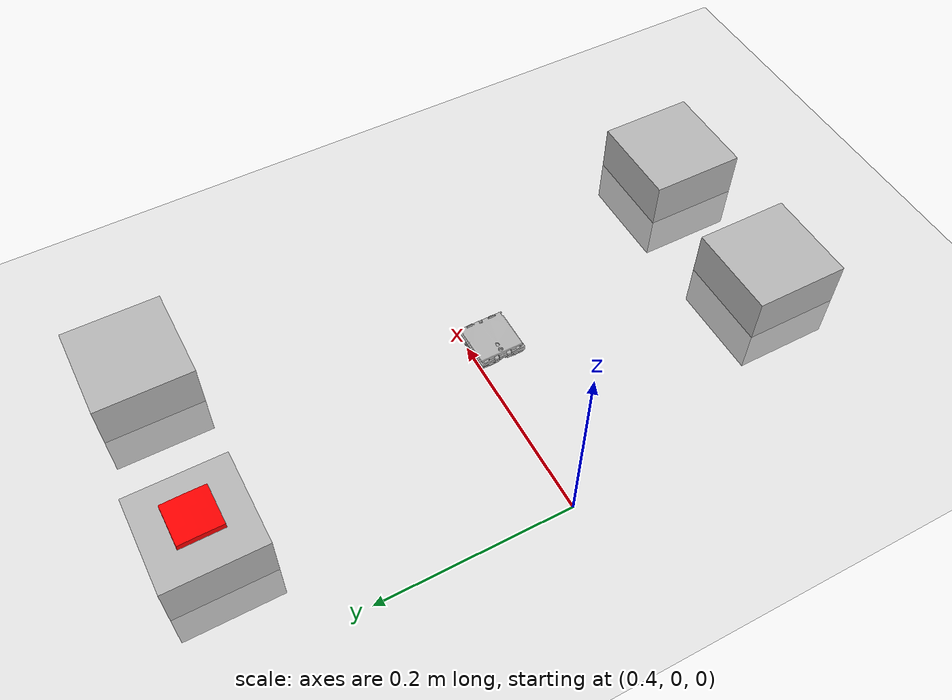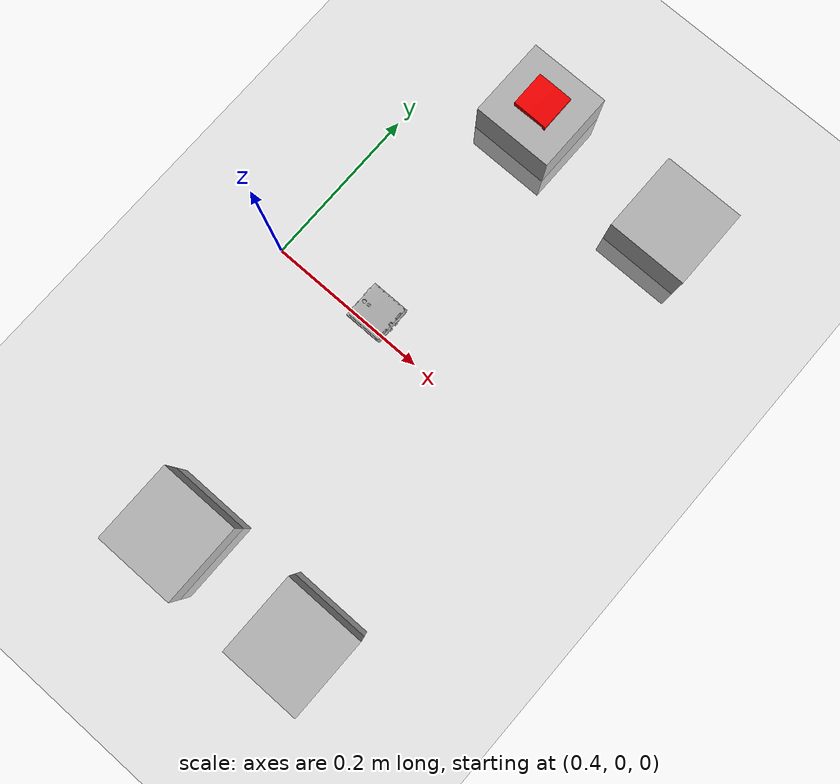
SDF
<sdf version="1.6">
 <world name="default">
  <plugin name="ros_link_attacher_plugin" filename="libgazebo_ros_link_attacher.so"/>
  <model name="ground_plane">
   <pose>0.55 0 0 0 -0 0</pose>
   <static>1</static>
   <link name="link">
    <collision name="collision">
     <geometry><plane><normal>0 0 1</normal><size>100 100</size></plane></geometry>
     <surface><friction><ode><mu>100</mu><mu2>50</mu2></ode></friction></surface>
    </collision>
    <visual name="visual">
     <cast_shadows>0</cast_shadows>
     <geometry><plane><normal>0 0 1</normal><size>100 100</size></plane></geometry>
     <material>
      <script><uri>file://media/materials/scripts/gazebo.material</uri><name>Gazebo/Grey</name></script>
     </material>
    </visual>
   </link>
  </model>
  <light name="sun" type="directional">
   <pose>0 0 10 0 -0 0</pose>
   <diffuse>0.8 0.8 0.8 1</diffuse>
   <specular>0.2 0.2 0.2 1</specular>
   <attenuation>
    <range>1000</range>
    <constant>0.9</constant>
    <linear>0.01</linear>
    <quadratic>0.001</quadratic>
   </attenuation>
   <direction>-0.5 0.1 -0.9</direction>
  </light>
  <physics name="default_physics" default="0" type="ode">
   <max_step_size>0.01</max_step_size>
   <real_time_factor>1</real_time_factor>
   <real_time_update_rate>100</real_time_update_rate>
   <ode>
    <solver>
     <type>quick</type>
     <iters>50</iters>
     <sor>1</sor>
     <use_dynamic_moi_rescaling>0</use_dynamic_moi_rescaling>
    </solver>
    <constraints>
     <cfm>0</cfm>
     <erp>0.2</erp>
     <contact_max_correcting_vel>100</contact_max_correcting_vel>
     <contact_surface_layer>0.001</contact_surface_layer>
    </constraints>
   </ode>
  </physics>
  <gravity>0 0 -9.8</gravity>
  <magnetic_field>6e-06 2.3e-05 -4.2e-05</magnetic_field>
  <atmosphere type="adiabatic"/>
  <scene><ambient>0.4 0.4 0.4 1</ambient><background>0.7 0.7 0.7 1</background><shadows>1</shadows></scene>
  <spherical_coordinates>
   <surface_model>EARTH_WGS84</surface_model>
   <latitude_deg>0</latitude_deg>
   <longitude_deg>0</longitude_deg>
   <elevation>0</elevation>
   <heading_deg>0</heading_deg>
  </spherical_coordinates>
  <model name="block_3">
   <link name="block">
    <collision name="block_collsion"><geometry><box><size>0.1 0.1 0.1</size></box></geometry></collision>
    <visual name="block_visual"><geometry><box><size>0.1 0.1 0.1</size></box></geometry></visual>
   </link>
   <static>1</static>
   <pose>0.714659 0.300624 0 0 -0 0</pose>
  </model>
  <model name="block_0">
   <link name="block">
    <collision name="block_collsion"><geometry><box><size>0.1 0.1 0.1</size></box></geometry></collision>
    <visual name="block_visual"><geometry><box><size>0.1 0.1 0.1</size></box></geometry></visual>
   </link>
   <static>1</static>
   <pose>0.528271 -0.306674 0 0 -0 0</pose>
  </model>
  <model name="block_4">
   <link name="block">
    <collision name="block_collsion"><geometry><box><size>0.1 0.1 0.1</size></box></geometry></collision>
    <visual name="block_visual"><geometry><box><size>0.1 0.1 0.1</size></box></geometry></visual>
   </link>
   <static>1</static>
   <pose>0.519249 0.30593 0 0 -0 0</pose>
  </model>
  <model name="block_5">
   <link name="block">
    <collision name="block_collsion"><geometry><box><size>0.1 0.1 0.1</size></box></geometry></collision>
    <visual name="block_visual"><geometry><box><size>0.1 0.1 0.1</size></box></geometry></visual>
   </link>
   <static>1</static>
   <pose>0.702675 -0.30586 0 0 -0 0</pose>
  </model>
  <model name="bottom_switch">
   <link name="bottom_switch">
    <collision name="bottom_switch">
     <geometry><mesh><uri>model://bottom_switch/meshes/bottom_switch.dae</uri></mesh></geometry>
    </collision>
    <visual name="bottom_switch_visual">
     <geometry><mesh><uri>model://bottom_switch/meshes/bottom_switch.dae</uri></mesh></geometry>
    </visual>
    <inertial>
     <inertia><ixx>1</ixx><ixy>0</ixy><ixz>0</ixz><iyy>1</iyy><iyz>0</iyz><izz>1</izz></inertia>
     <mass>1</mass>
    </inertial>
   </link>
   <static>1</static>
   <pose>0.542948 0.005743 0.082335 0.009498 -0.013672 -9.5e-05</pose>
  </model>
  <model name="housing_switch">
   <link name="housing_switch">
    <collision name="housing_switch">
     <geometry><mesh><uri>model://house_switch/meshes/housing_switch.dae</uri></mesh></geometry>
    </collision>
    <visual name="housing_switch_visual">
     <geometry><mesh><uri>model://house_switch/meshes/housing_switch.dae</uri></mesh></geometry>
    </visual>
    <inertial>
     <inertia><ixx>1</ixx><ixy>0</ixy><ixz>0</ixz><iyy>1</iyy><iyz>0</iyz><izz>1</izz></inertia>
     <mass>1</mass>
    </inertial>
   </link>
   <static>1</static>
   <pose>0.544308 0.00548 0.083639 0.00099 -0.000953 -8e-06</pose>
  </model>
  <model name="button">
   <link name="button">
    <collision name="button">
     <geometry><mesh><uri>model://button/meshes/Button_simplified.dae</uri></mesh></geometry>
    </collision>
    <visual name="button">
     <geometry><mesh><uri>model://button/meshes/Button_simplified.dae</uri></mesh></geometry>
     <material><ambient>1 0 0 1</ambient></material>
    </visual>
   </link>
   <static>1</static>
   <pose>0.51971 0.308372 0.054206 0 0 -1.56398</pose>
  </model>
 </world>
</sdf>
